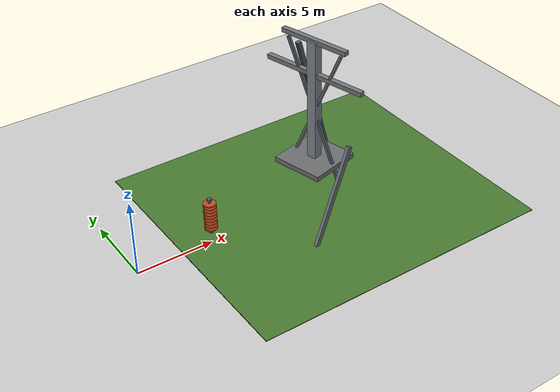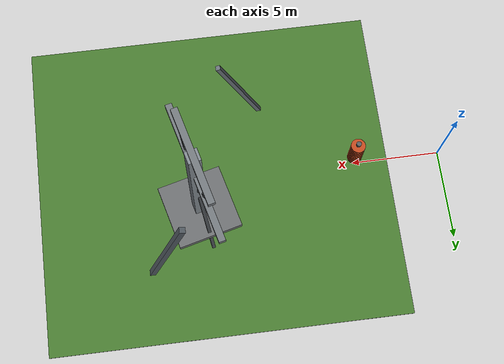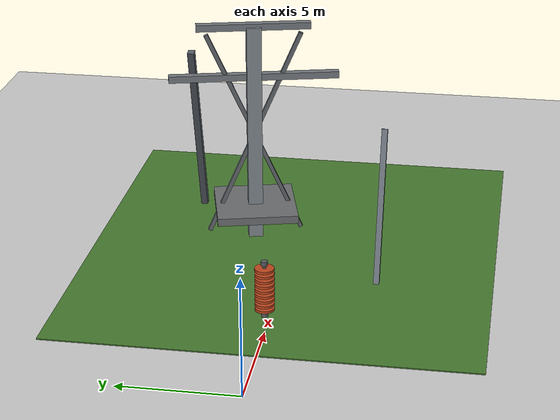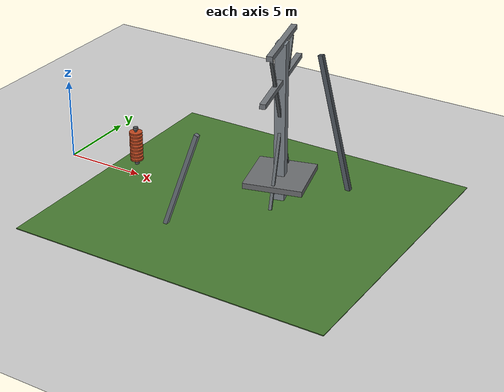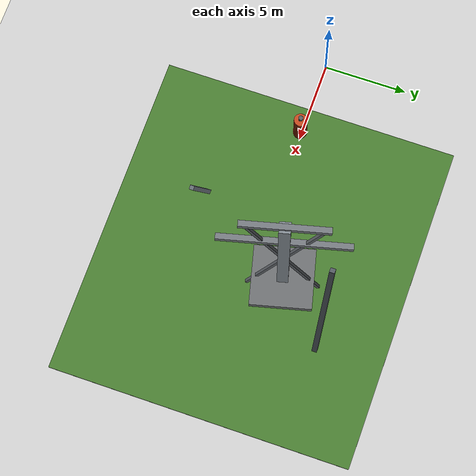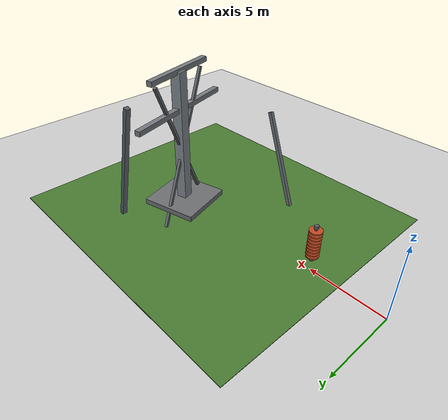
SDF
<?xml version="1.0"?>
<sdf version="1.6">
  <world name="insulator_dataset">
    <plugin name="gazebo_ros_state" filename="libgazebo_ros_state.so">
      <ros><namespace>/gazebo</namespace></ros>
      <update_rate>30.0</update_rate>
    </plugin>
    <gravity>0 0 -9.81</gravity>
    <physics name="default_physics" type="ode">
      <real_time_update_rate>500</real_time_update_rate>
      <max_step_size>0.002</max_step_size>
    </physics>
    <scene>
      <ambient>0.45 0.45 0.45 1</ambient>
      <background>0.55 0.72 0.90 1</background>
      <shadows>true</shadows>
    </scene>
    <include><uri>model://sun</uri></include>
    <include><uri>model://ground_plane</uri></include>

    <model name="dataset_camera">
      <static>true</static>
      <pose>0 0 2 0 0 0</pose>
      <link name="camera_link">
        <sensor name="camera" type="camera">
          <always_on>true</always_on>
          <update_rate>20</update_rate>
          <visualize>true</visualize>
          <camera>
            <horizontal_fov>1.0472</horizontal_fov>
            <image><width>640</width><height>480</height><format>R8G8B8</format></image>
            <clip><near>0.1</near><far>60</far></clip>
            <noise><type>gaussian</type><mean>0.0</mean><stddev>0.002</stddev></noise>
          </camera>
          <plugin name="dataset_camera_ros" filename="libgazebo_ros_camera.so">
            <ros><namespace>/insulens</namespace></ros>
            <camera_name>camera</camera_name>
            <frame_name>dataset_camera_optical_frame</frame_name>
          </plugin>
        </sensor>
      </link>
    </model>

    <include>
      <uri>model://insulator</uri>
      <name>insulator_training</name>
      <pose>5 0 2 0 0 0</pose>
    </include>
    <include>
      <uri>model://transmission_tower</uri>
      <name>dataset_tower</name>
      <pose>14 2 0 0 0 0.25</pose>
    </include>

    <model name="background_structures">
      <static>true</static>
      <link name="structures">
        <visual name="beam_a"><pose>11 -4 3 0 0.35 0</pose><geometry><box><size>0.25 0.25 7</size></box></geometry><material><diffuse>0.42 0.45 0.48 1</diffuse></material></visual>
        <visual name="beam_b"><pose>16 5 4 0 -0.25 0</pose><geometry><box><size>0.3 0.3 9</size></box></geometry><material><diffuse>0.32 0.35 0.38 1</diffuse></material></visual>
        <visual name="terrain_patch"><pose>13 0 0.03 0 0 0</pose><geometry><box><size>20 18 0.05</size></box></geometry><material><ambient>0.16 0.28 0.10 1</ambient><diffuse>0.28 0.48 0.19 1</diffuse></material></visual>
      </link>
    </model>
  </world>
</sdf>

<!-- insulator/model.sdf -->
<sdf version="1.6">
  <model name="insulator">
    <static>false</static>
    <link name="body">
      <gravity>false</gravity>
      <kinematic>true</kinematic>
      <inertial>
        <mass>8.0</mass>
        <inertia>
          <ixx>1.0</ixx><iyy>1.0</iyy><izz>1.0</izz>
        </inertia>
      </inertial>
      <collision name="shaft_collision">
        <geometry><cylinder><radius>0.09</radius><length>2.2</length></cylinder></geometry>
      </collision>
      <visual name="shaft">
        <geometry><cylinder><radius>0.075</radius><length>2.2</length></cylinder></geometry>
        <material><ambient>0.18 0.20 0.21 1</ambient><diffuse>0.32 0.34 0.35 1</diffuse><specular>0.7 0.7 0.7 1</specular></material>
      </visual>
      <visual name="cap_top">
        <pose>0 0 1.15 0 0 0</pose>
        <geometry><cylinder><radius>0.14</radius><length>0.18</length></cylinder></geometry>
        <material><ambient>0.15 0.16 0.17 1</ambient><diffuse>0.35 0.36 0.37 1</diffuse></material>
      </visual>
      <visual name="cap_bottom">
        <pose>0 0 -1.15 0 0 0</pose>
        <geometry><cylinder><radius>0.14</radius><length>0.18</length></cylinder></geometry>
        <material><ambient>0.15 0.16 0.17 1</ambient><diffuse>0.35 0.36 0.37 1</diffuse></material>
      </visual>
      <visual name="disc_0"><pose>0 0 -0.88 0 0 0</pose><geometry><cylinder><radius>0.40</radius><length>0.105</length></cylinder></geometry><material><ambient>0.32 0.10 0.055 1</ambient><diffuse>0.75 0.28 0.12 1</diffuse><specular>0.45 0.40 0.35 1</specular></material></visual>
      <visual name="disc_1"><pose>0 0 -0.66 0 0 0</pose><geometry><cylinder><radius>0.40</radius><length>0.105</length></cylinder></geometry><material><ambient>0.32 0.10 0.055 1</ambient><diffuse>0.75 0.28 0.12 1</diffuse><specular>0.45 0.40 0.35 1</specular></material></visual>
      <visual name="disc_2"><pose>0 0 -0.44 0 0 0</pose><geometry><cylinder><radius>0.40</radius><length>0.105</length></cylinder></geometry><material><ambient>0.32 0.10 0.055 1</ambient><diffuse>0.75 0.28 0.12 1</diffuse><specular>0.45 0.40 0.35 1</specular></material></visual>
      <visual name="disc_3"><pose>0 0 -0.22 0 0 0</pose><geometry><cylinder><radius>0.40</radius><length>0.105</length></cylinder></geometry><material><ambient>0.32 0.10 0.055 1</ambient><diffuse>0.75 0.28 0.12 1</diffuse><specular>0.45 0.40 0.35 1</specular></material></visual>
      <visual name="disc_4"><pose>0 0 0.00 0 0 0</pose><geometry><cylinder><radius>0.40</radius><length>0.105</length></cylinder></geometry><material><ambient>0.32 0.10 0.055 1</ambient><diffuse>0.75 0.28 0.12 1</diffuse><specular>0.45 0.40 0.35 1</specular></material></visual>
      <visual name="disc_5"><pose>0 0 0.22 0 0 0</pose><geometry><cylinder><radius>0.40</radius><length>0.105</length></cylinder></geometry><material><ambient>0.32 0.10 0.055 1</ambient><diffuse>0.75 0.28 0.12 1</diffuse><specular>0.45 0.40 0.35 1</specular></material></visual>
      <visual name="disc_6"><pose>0 0 0.44 0 0 0</pose><geometry><cylinder><radius>0.40</radius><length>0.105</length></cylinder></geometry><material><ambient>0.32 0.10 0.055 1</ambient><diffuse>0.75 0.28 0.12 1</diffuse><specular>0.45 0.40 0.35 1</specular></material></visual>
      <visual name="disc_7"><pose>0 0 0.66 0 0 0</pose><geometry><cylinder><radius>0.40</radius><length>0.105</length></cylinder></geometry><material><ambient>0.32 0.10 0.055 1</ambient><diffuse>0.75 0.28 0.12 1</diffuse><specular>0.45 0.40 0.35 1</specular></material></visual>
      <visual name="disc_8"><pose>0 0 0.88 0 0 0</pose><geometry><cylinder><radius>0.40</radius><length>0.105</length></cylinder></geometry><material><ambient>0.32 0.10 0.055 1</ambient><diffuse>0.75 0.28 0.12 1</diffuse><specular>0.45 0.40 0.35 1</specular></material></visual>
    </link>
  </model>
</sdf>

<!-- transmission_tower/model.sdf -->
<sdf version="1.6">
  <model name="transmission_tower">
    <static>true</static>
    <link name="tower">
      <visual name="mast"><pose>0 0 5 0 0 0</pose><geometry><box><size>0.65 0.65 10</size></box></geometry><material><ambient>0.25 0.27 0.29 1</ambient><diffuse>0.5 0.53 0.56 1</diffuse></material></visual>
      <collision name="mast_collision"><pose>0 0 5 0 0 0</pose><geometry><box><size>0.65 0.65 10</size></box></geometry></collision>
      <visual name="base"><pose>0 0 1.5 0 0 0</pose><geometry><box><size>3.6 3.6 0.35</size></box></geometry><material><diffuse>0.42 0.43 0.44 1</diffuse></material></visual>
      <visual name="arm_low"><pose>0 0 7.7 0 0 0</pose><geometry><box><size>0.35 7.5 0.30</size></box></geometry><material><diffuse>0.45 0.47 0.49 1</diffuse></material></visual>
      <visual name="arm_high"><pose>0 0 10.0 0 0 0</pose><geometry><box><size>0.35 5.0 0.30</size></box></geometry><material><diffuse>0.45 0.47 0.49 1</diffuse></material></visual>
      <visual name="brace_a"><pose>0 0 5 0.42 0 0</pose><geometry><box><size>0.18 0.18 10.2</size></box></geometry><material><diffuse>0.38 0.40 0.42 1</diffuse></material></visual>
      <visual name="brace_b"><pose>0 0 5 -0.42 0 0</pose><geometry><box><size>0.18 0.18 10.2</size></box></geometry><material><diffuse>0.38 0.40 0.42 1</diffuse></material></visual>
    </link>
  </model>
</sdf>
